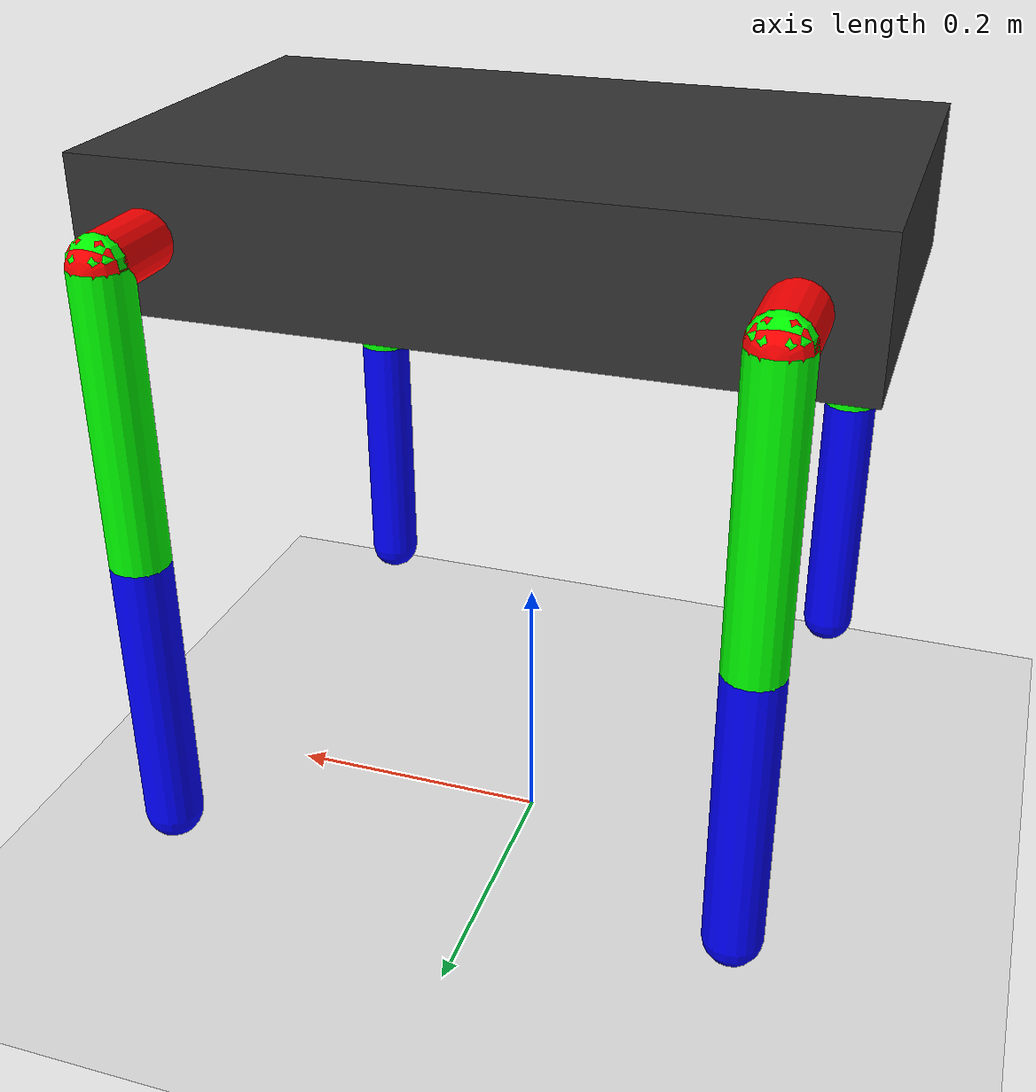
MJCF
<mujoco model="quadruped_robust">
    <compiler angle="radian" coordinate="local" inertiafromgeom="true"/>
    <option gravity="0 0 0" integrator="RK4" timestep="0.001"/>

    <default>
        <joint damping="0.0" frictionloss="0.0" armature="0.01"/>
        <geom solimp="0.9 0.95 0.001" solref="0.02 1"/>
    </default>

    <worldbody>
        <light diffuse=".5 .5 .5" pos="0 0 3" dir="0 0 -1"/>
        <geom type="plane" size="5 5 0.1" rgba=".9 .9 .9 1" friction="1 0.005 0.0001"/>

        <body name="base_link" pos="0 0 0.5">
            <geom type="box" size="0.25 0.15 0.05" rgba="0.2 0.2 0.2 1" mass="5.0"/>

            <body name="FL_hip" pos="0.2 0.15 0">
                <joint name="FL_j1" type="hinge" axis="1 0 0"/>
                <geom type="capsule" fromto="0 0 0 0 0.05 0" size="0.02" rgba="1 0 0 1"/>
                <body name="FL_thigh" pos="0 0.05 0">
                    <joint name="FL_j2" type="hinge" axis="0 1 0"/>
                    <geom type="capsule" fromto="0 0 0 0 0 -0.2" size="0.02" rgba="0 1 0 1"/>
                    <body name="FL_calf" pos="0 0 -0.2">
                        <joint name="FL_j3" type="hinge" axis="0 1 0"/>
                        <geom type="capsule" fromto="0 0 0 0 0 -0.2" size="0.02" rgba="0 0 1 1"/>
                        <site name="FL_tip_site" pos="0 0 -0.2" size="0.015" rgba="1 1 0 1"/>

                    </body>
                </body>
            </body>

            <body name="FR_hip" pos="0.2 -0.15 0">
                <joint name="FR_j1" type="hinge" axis="1 0 0"/>
                <geom type="capsule" fromto="0 0 0 0 -0.05 0" size="0.02" rgba="1 0 0 1"/>
                <body name="FR_thigh" pos="0 -0.05 0">
                    <joint name="FR_j2" type="hinge" axis="0 1 0"/>
                    <geom type="capsule" fromto="0 0 0 0 0 -0.2" size="0.02" rgba="0 1 0 1"/>
                    <body name="FR_calf" pos="0 0 -0.2">
                        <joint name="FR_j3" type="hinge" axis="0 1 0"/>
                        <geom type="capsule" fromto="0 0 0 0 0 -0.2" size="0.02" rgba="0 0 1 1"/>
                    </body>
                </body>
            </body>

            <body name="RL_hip" pos="-0.2 0.15 0">
                <joint name="RL_j1" type="hinge" axis="1 0 0"/>
                <geom type="capsule" fromto="0 0 0 0 0.05 0" size="0.02" rgba="1 0 0 1"/>
                <body name="RL_thigh" pos="0 0.05 0">
                    <joint name="RL_j2" type="hinge" axis="0 1 0"/>
                    <geom type="capsule" fromto="0 0 0 0 0 -0.2" size="0.02" rgba="0 1 0 1"/>
                    <body name="RL_calf" pos="0 0 -0.2">
                        <joint name="RL_j3" type="hinge" axis="0 1 0"/>
                        <geom type="capsule" fromto="0 0 0 0 0 -0.2" size="0.02" rgba="0 0 1 1"/>
                    </body>
                </body>
            </body>

            <body name="RR_hip" pos="-0.2 -0.15 0">
                <joint name="RR_j1" type="hinge" axis="1 0 0"/>
                <geom type="capsule" fromto="0 0 0 0 -0.05 0" size="0.02" rgba="1 0 0 1"/>
                <body name="RR_thigh" pos="0 -0.05 0">
                    <joint name="RR_j2" type="hinge" axis="0 1 0"/>
                    <geom type="capsule" fromto="0 0 0 0 0 -0.2" size="0.02" rgba="0 1 0 1"/>
                    <body name="RR_calf" pos="0 0 -0.2">
                        <joint name="RR_j3" type="hinge" axis="0 1 0"/>
                        <geom type="capsule" fromto="0 0 0 0 0 -0.2" size="0.02" rgba="0 0 1 1"/>
                    </body>
                </body>
            </body>
        </body>
    </worldbody>

    <actuator>
        <position name="act_FL_j1" joint="FL_j1" kp="50" ctrlrange="-0.785 0.785"/>
        <position name="act_FL_j2" joint="FL_j2" kp="50" ctrlrange="-3.14 3.14"/>
        <position name="act_FL_j3" joint="FL_j3" kp="50" ctrlrange="-3.14 0"/>

        <position name="act_FR_j1" joint="FR_j1" kp="50" ctrlrange="-0.785 0.785"/>
        <position name="act_FR_j2" joint="FR_j2" kp="50" ctrlrange="-3.14 3.14"/>
        <position name="act_FR_j3" joint="FR_j3" kp="50" ctrlrange="-3.14 0"/>

        <position name="act_RL_j1" joint="RL_j1" kp="50" ctrlrange="-0.785 0.785"/>
        <position name="act_RL_j2" joint="RL_j2" kp="50" ctrlrange="-3.14 3.14"/>
        <position name="act_RL_j3" joint="RL_j3" kp="50" ctrlrange="0 3.14"/>

        <position name="act_RR_j1" joint="RR_j1" kp="50" ctrlrange="-0.785 0.785"/>
        <position name="act_RR_j2" joint="RR_j2" kp="50" ctrlrange="-3.14 3.14"/>
        <position name="act_RR_j3" joint="RR_j3" kp="50" ctrlrange="0 3.14"/>
    </actuator>

    <sensor>
        <jointvel name="sens_vel_FL_j1" joint="FL_j1"/>
        <jointvel name="sens_vel_FL_j2" joint="FL_j2"/>
        <jointvel name="sens_vel_FL_j3" joint="FL_j3"/>

        <actuatorfrc name="sens_tau_FL_j1" actuator="act_FL_j1"/>
        <actuatorfrc name="sens_tau_FL_j2" actuator="act_FL_j2"/>
        <actuatorfrc name="sens_tau_FL_j3" actuator="act_FL_j3"/>

        <force name="sens_force_FL" site="FL_tip_site"/>
    </sensor>

</mujoco>
